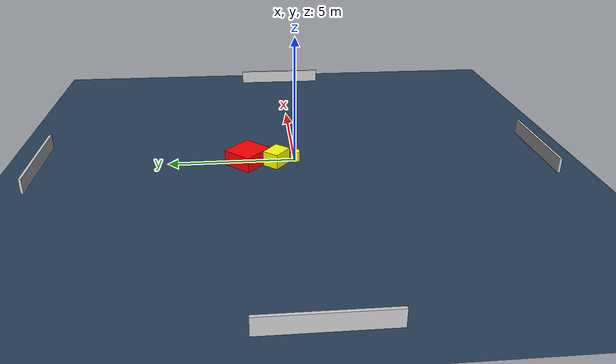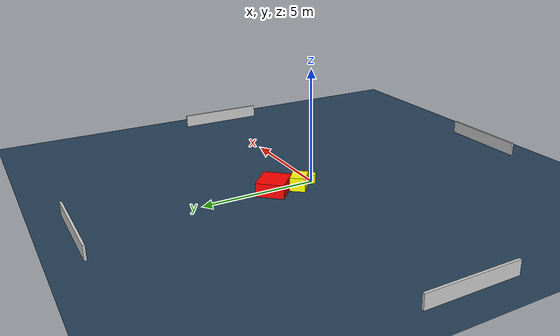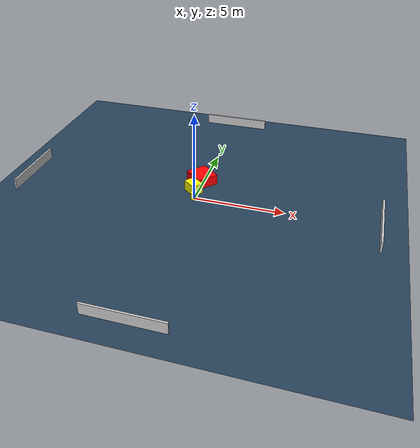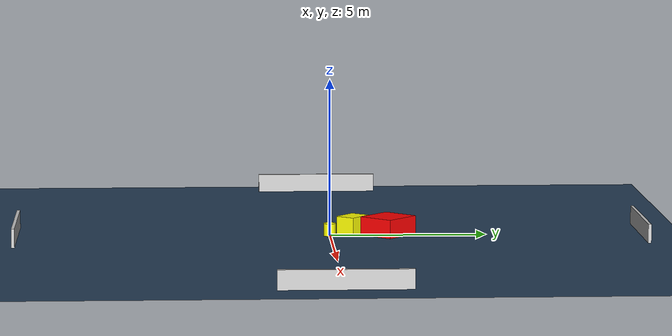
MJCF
<?xml version="1.0" ?>
<mujoco model="generated_environment">
  <option timestep="0.01" integrator="RK4" cone="elliptic"/>
  <default>
    <geom density="1"/>
  </default>
  <asset>
    <texture builtin="gradient" height="3072" name="skybox" rgb1="0.3 0.5 0.7" rgb2="0 0 0" type="skybox" width="512"/>
    <texture builtin="checker" height="300" name="groundplane" rgb1="0.2 0.3 0.4" rgb2="0.1 0.2 0.3" type="2d" width="300"/>
    <material name="groundplane" reflectance="0.2" texrepeat="5 5" texture="groundplane"/>
  </asset>
  <worldbody>
    <light dir="0 0 -1" directional="true" pos="0 0 1.5"/>
    <geom condim="3" friction="0.5 0.005 0.001" material="groundplane" name="floor" pos="0 0 0" size="0 0 0.05" type="plane"/>
    <body name="walls">
      <geom name="wall_1" condim="4" pos="-10.0 0.0 0.3" rgba="0.800000011920929 0.800000011920929 0.800000011920929 1.0" size="0.05 2.0 0.3" type="box"/>
      <geom name="wall_2" condim="4" pos="10.0 0.0 0.3" rgba="0.800000011920929 0.800000011920929 0.800000011920929 1.0" size="0.05 2.0 0.3" type="box"/>
      <geom name="wall_3" condim="4" pos="0.0 -10.0 0.3" rgba="0.800000011920929 0.800000011920929 0.800000011920929 1.0" size="2.0 0.05 0.3" type="box"/>
      <geom name="wall_4" condim="4" pos="0.0 10.0 0.3" rgba="0.800000011920929 0.800000011920929 0.800000011920929 1.0" size="2.0 0.05 0.3" type="box"/>
    </body>
    <body name="robot">
      <joint name="joint_x" type="slide" pos="0 0 0" axis="1 0 0"/>
      <joint name="joint_y" type="slide" pos="0 0 0" axis="0 1 0"/>
      <geom name="robot" type="cylinder" pos="0.0 0.0 0.2" size="0.2 0.2 0.0" mass="5.0" friction="1.0 0.005 0.0001" condim="4" rgba="1.0 1.0 0.0 1.0"/>
    </body>
    <body name="obstacle_1_movable">
      <geom name="obstacle_1_movable" condim="4" pos="-0.26514729123242187 0.7481571602455425 0.3" euler="0 0 230.86274583613218" friction="0.0 0.005 0.001" rgba="1.0 1.0 0.0 1.0" size="0.3293736919198287 0.4310968442034956 0.3" type="box" mass="0.1"/>
      <joint type="free"/>
    </body>
    <body name="obstacle_2_static">
      <geom name="obstacle_2_static" condim="4" pos="-0.1051929074415421 1.8787882159006342 0.3" euler="0 0 227.73021612286715" friction="0.0 0.005 0.001" rgba="1.0 0.0 0.0 1.0" size="0.6074499983315188 0.6577452083091357 0.3" type="box"/>
    </body>
  </worldbody>
  <actuator>
    <motor name="actuator_x" joint="joint_x" gear="1" ctrlrange="-1 1"/>
    <motor name="actuator_y" joint="joint_y" gear="1" ctrlrange="-1 1"/>
  </actuator>
</mujoco>
